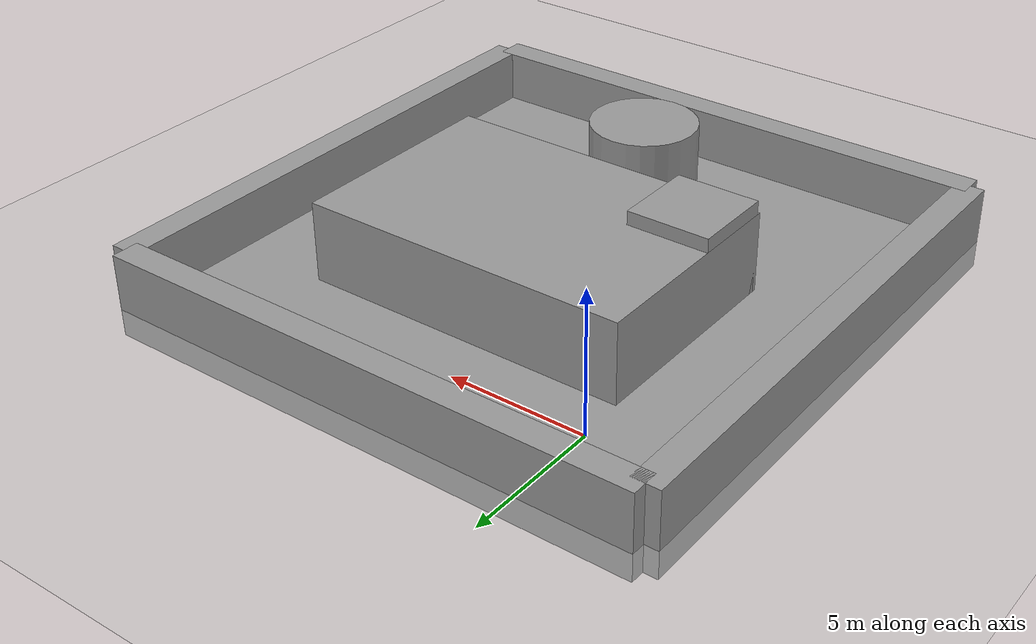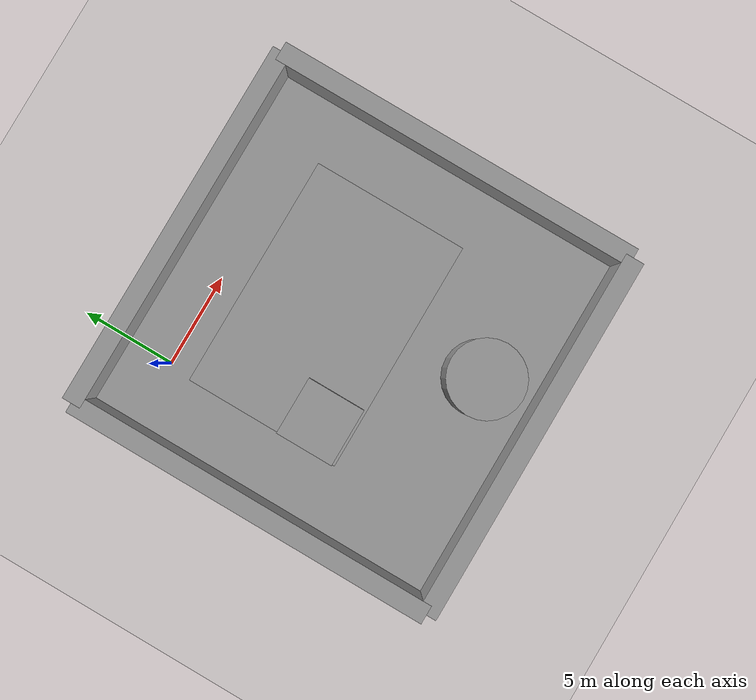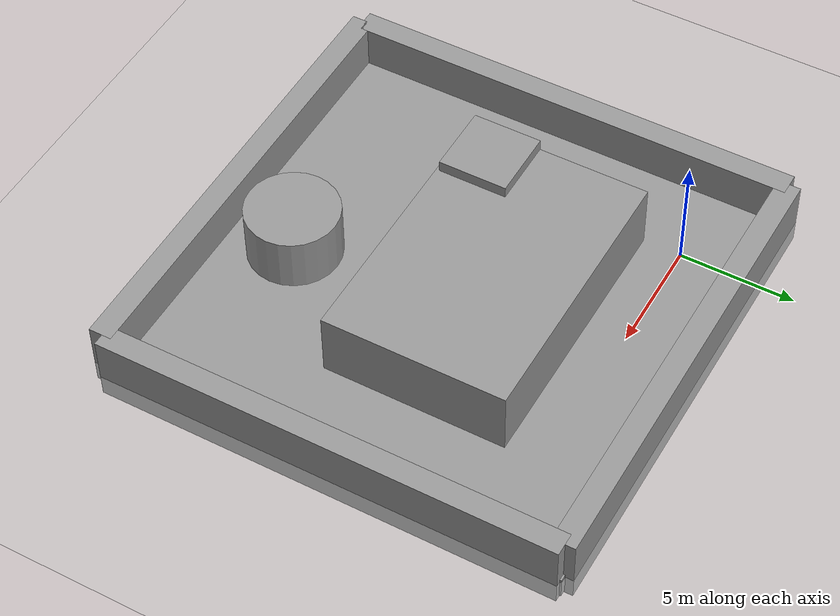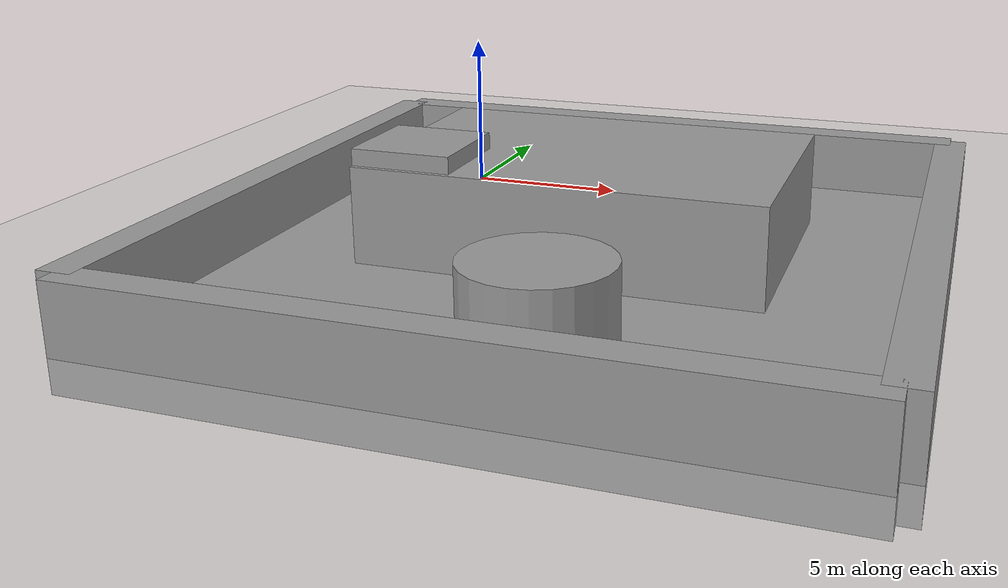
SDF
<sdf version="1.7">
 <world name="default">
  <light name="sun" type="directional">
   <pose>0 0 10 0 -0 0</pose>
   <diffuse>0.8 0.8 0.8 1</diffuse>
   <specular>0.2 0.2 0.2 1</specular>
   <attenuation>
    <range>1000</range>
    <constant>0.9</constant>
    <linear>0.01</linear>
    <quadratic>0.001</quadratic>
   </attenuation>
   <direction>-0.5 0.1 -0.9</direction>
   <spot><inner_angle>0</inner_angle><outer_angle>0</outer_angle><falloff>0</falloff></spot>
  </light>
  <model name="ground_plane">
   <static>1</static>
   <link name="link">
    <collision name="collision">
     <geometry><plane><normal>0 0 1</normal><size>100 100</size></plane></geometry>
     <surface>
      <contact><collide_bitmask>65535</collide_bitmask></contact>
      <friction><ode><mu>100</mu><mu2>50</mu2></ode></friction>
     </surface>
    </collision>
    <visual name="visual">
     <cast_shadows>0</cast_shadows>
     <geometry><plane><normal>0 0 1</normal><size>100 100</size></plane></geometry>
     <material>
      <script><uri>file://media/materials/scripts/gazebo.material</uri><name>Gazebo/Grey</name></script>
     </material>
    </visual>
   </link>
  </model>
  <gravity>0 0 -9.8</gravity>
  <magnetic_field>6e-06 2.3e-05 -4.2e-05</magnetic_field>
  <atmosphere type="adiabatic"/>
  <physics type="ode">
   <max_step_size>0.001</max_step_size>
   <real_time_factor>1</real_time_factor>
   <real_time_update_rate>1000</real_time_update_rate>
  </physics>
  <scene><ambient>0.4 0.4 0.4 1</ambient><background>0.7 0.7 0.7 1</background><shadows>1</shadows></scene>
  <spherical_coordinates>
   <surface_model>EARTH_WGS84</surface_model>
   <latitude_deg>0</latitude_deg>
   <longitude_deg>0</longitude_deg>
   <elevation>0</elevation>
   <heading_deg>0</heading_deg>
  </spherical_coordinates>
  <model name="modelworld">
   <link name="link_0">
    <inertial>
     <mass>12.3713</mass>
     <inertia><ixx>2.06188</ixx><ixy>0</ixy><ixz>0</ixz><iyy>413.408</iyy><iyz>0</iyz><izz>413.408</izz></inertia>
    </inertial>
    <pose>-0.285714 10.8504 -0 0 -0 0</pose>
    <visual name="visual">
     <geometry><box><size>20 1 3</size></box></geometry>
     <material>
      <lighting>1</lighting>
      <script><uri>file://media/materials/scripts/gazebo.material</uri><name>Gazebo/Grey</name></script>
      <shader type="pixel"><normal_map>__default__</normal_map></shader>
      <ambient>0 0 0 1</ambient>
      <diffuse>0.7 0.7 0.7 1</diffuse>
      <specular>0.01 0.01 0.01 1</specular>
      <emissive>0 0 0 1</emissive>
     </material>
    </visual>
    <collision name="collision">
     <geometry><box><size>20 1 3</size></box></geometry>
     <surface>
      <friction>
       <ode><mu>1</mu><mu2>1</mu2><fdir1>0 0 0</fdir1><slip1>0</slip1><slip2>0</slip2></ode>
       <torsional>
        <coefficient>1</coefficient>
        <patch_radius>0</patch_radius>
        <surface_radius>0</surface_radius>
        <use_patch_radius>1</use_patch_radius>
        <ode><slip>0</slip></ode>
       </torsional>
      </friction>
      <bounce><restitution_coefficient>0</restitution_coefficient><threshold>1e+06</threshold></bounce>
      <contact>
       <collide_without_contact>0</collide_without_contact>
       <collide_without_contact_bitmask>1</collide_without_contact_bitmask>
       <collide_bitmask>1</collide_bitmask>
       <ode>
        <soft_cfm>0</soft_cfm>
        <soft_erp>0.2</soft_erp>
        <kp>1e+13</kp>
        <kd>1</kd>
        <max_vel>0.01</max_vel>
        <min_depth>0</min_depth>
       </ode>
       <bullet>
        <split_impulse>1</split_impulse>
        <split_impulse_penetration_threshold>-0.01</split_impulse_penetration_threshold>
        <soft_cfm>0</soft_cfm>
        <soft_erp>0.2</soft_erp>
        <kp>1e+13</kp>
        <kd>1</kd>
       </bullet>
      </contact>
     </surface>
    </collision>
   </link>
   <link name="link_0_0">
    <inertial>
     <mass>198.663</mass>
     <inertia><ixx>6402.39</ixx><ixy>0</ixy><ixz>0</ixz><iyy>1710.45</iyy><iyz>0</iyz><izz>8079.72</izz></inertia>
    </inertial>
    <pose>0 1 -0.9 9e-06 -0 0</pose>
    <visual name="visual">
     <geometry><box><size>20 20 1</size></box></geometry>
     <material>
      <lighting>1</lighting>
      <script><uri>file://media/materials/scripts/gazebo.material</uri><name>Gazebo/Grey</name></script>
      <shader type="pixel"><normal_map>__default__</normal_map></shader>
      <ambient>0.3 0.3 0.3 1</ambient>
      <diffuse>0.7 0.7 0.7 1</diffuse>
      <specular>0.01 0.01 0.01 1</specular>
      <emissive>0 0 0 1</emissive>
     </material>
    </visual>
    <collision name="collision">
     <geometry><box><size>20 20 1</size></box></geometry>
     <surface>
      <friction>
       <ode><mu>1</mu><mu2>1</mu2><fdir1>0 0 0</fdir1><slip1>0</slip1><slip2>0</slip2></ode>
       <torsional>
        <coefficient>1</coefficient>
        <patch_radius>0</patch_radius>
        <surface_radius>0</surface_radius>
        <use_patch_radius>1</use_patch_radius>
        <ode><slip>0</slip></ode>
       </torsional>
      </friction>
      <bounce><restitution_coefficient>0</restitution_coefficient><threshold>1e+06</threshold></bounce>
      <contact>
       <collide_without_contact>0</collide_without_contact>
       <collide_without_contact_bitmask>1</collide_without_contact_bitmask>
       <collide_bitmask>1</collide_bitmask>
       <ode>
        <soft_cfm>0</soft_cfm>
        <soft_erp>0.2</soft_erp>
        <kp>1e+13</kp>
        <kd>1</kd>
        <max_vel>0.01</max_vel>
        <min_depth>0</min_depth>
       </ode>
       <bullet>
        <split_impulse>1</split_impulse>
        <split_impulse_penetration_threshold>-0.01</split_impulse_penetration_threshold>
        <soft_cfm>0</soft_cfm>
        <soft_erp>0.2</soft_erp>
        <kp>1e+13</kp>
        <kd>1</kd>
       </bullet>
      </contact>
     </surface>
    </collision>
   </link>
   <link name="link_0_clone">
    <inertial>
     <mass>12.3713</mass>
     <inertia><ixx>2.06188</ixx><ixy>0</ixy><ixz>0</ixz><iyy>413.407</iyy><iyz>0</iyz><izz>413.407</izz></inertia>
    </inertial>
    <pose>-0.285714 -9.18241 -0 0 -0 0</pose>
    <visual name="visual">
     <geometry><box><size>20 1 3</size></box></geometry>
     <material>
      <lighting>1</lighting>
      <script><uri>file://media/materials/scripts/gazebo.material</uri><name>Gazebo/Grey</name></script>
      <shader type="pixel"><normal_map>__default__</normal_map></shader>
      <ambient>0 0 0 1</ambient>
      <diffuse>0.7 0.7 0.7 1</diffuse>
      <specular>0.01 0.01 0.01 1</specular>
      <emissive>0 0 0 1</emissive>
     </material>
    </visual>
    <collision name="collision">
     <geometry><box><size>20 1 3</size></box></geometry>
     <surface>
      <friction>
       <ode><mu>1</mu><mu2>1</mu2><fdir1>0 0 0</fdir1><slip1>0</slip1><slip2>0</slip2></ode>
       <torsional>
        <coefficient>1</coefficient>
        <patch_radius>0</patch_radius>
        <surface_radius>0</surface_radius>
        <use_patch_radius>1</use_patch_radius>
        <ode><slip>0</slip></ode>
       </torsional>
      </friction>
      <bounce><restitution_coefficient>0</restitution_coefficient><threshold>1e+06</threshold></bounce>
      <contact>
       <collide_without_contact>0</collide_without_contact>
       <collide_without_contact_bitmask>1</collide_without_contact_bitmask>
       <collide_bitmask>1</collide_bitmask>
       <ode>
        <soft_cfm>0</soft_cfm>
        <soft_erp>0.2</soft_erp>
        <kp>1e+13</kp>
        <kd>1</kd>
        <max_vel>0.01</max_vel>
        <min_depth>0</min_depth>
       </ode>
       <bullet>
        <split_impulse>1</split_impulse>
        <split_impulse_penetration_threshold>-0.01</split_impulse_penetration_threshold>
        <soft_cfm>0</soft_cfm>
        <soft_erp>0.2</soft_erp>
        <kp>1e+13</kp>
        <kd>1</kd>
       </bullet>
      </contact>
     </surface>
    </collision>
   </link>
   <link name="link_0_clone_0_clone">
    <inertial>
     <mass>12.3713</mass>
     <inertia><ixx>2.06188</ixx><ixy>0</ixy><ixz>0</ixz><iyy>158.815</iyy><iyz>0</iyz><izz>158.815</izz></inertia>
    </inertial>
    <pose>-10.2857 0.850334 0 0 -0 0</pose>
    <visual name="visual">
     <pose>0 0 0 0 -0 1.5707</pose>
     <geometry><box><size>20 1 3</size></box></geometry>
     <material>
      <lighting>1</lighting>
      <script><uri>file://media/materials/scripts/gazebo.material</uri><name>Gazebo/Grey</name></script>
      <shader type="pixel"><normal_map>__default__</normal_map></shader>
      <ambient>0 0 0 1</ambient>
      <diffuse>0.7 0.7 0.7 1</diffuse>
      <specular>0.01 0.01 0.01 1</specular>
      <emissive>0 0 0 1</emissive>
     </material>
    </visual>
    <collision name="collision">
     <pose>0 0 0 0 -0 1.5707</pose>
     <geometry><box><size>20 1 3</size></box></geometry>
     <surface>
      <friction>
       <ode><mu>1</mu><mu2>1</mu2><fdir1>0 0 0</fdir1><slip1>0</slip1><slip2>0</slip2></ode>
       <torsional>
        <coefficient>1</coefficient>
        <patch_radius>0</patch_radius>
        <surface_radius>0</surface_radius>
        <use_patch_radius>1</use_patch_radius>
        <ode><slip>0</slip></ode>
       </torsional>
      </friction>
      <bounce><restitution_coefficient>0</restitution_coefficient><threshold>1e+06</threshold></bounce>
      <contact>
       <collide_without_contact>0</collide_without_contact>
       <collide_without_contact_bitmask>1</collide_without_contact_bitmask>
       <collide_bitmask>1</collide_bitmask>
       <ode>
        <soft_cfm>0</soft_cfm>
        <soft_erp>0.2</soft_erp>
        <kp>1e+13</kp>
        <kd>1</kd>
        <max_vel>0.01</max_vel>
        <min_depth>0</min_depth>
       </ode>
       <bullet>
        <split_impulse>1</split_impulse>
        <split_impulse_penetration_threshold>-0.01</split_impulse_penetration_threshold>
        <soft_cfm>0</soft_cfm>
        <soft_erp>0.2</soft_erp>
        <kp>1e+13</kp>
        <kd>1</kd>
       </bullet>
      </contact>
     </surface>
    </collision>
   </link>
   <link name="link_0_clone_0_clone_clone">
    <inertial>
     <mass>12.3713</mass>
     <inertia><ixx>2.06188</ixx><ixy>0</ixy><ixz>0</ixz><iyy>158.815</iyy><iyz>0</iyz><izz>158.815</izz></inertia>
    </inertial>
    <pose>9.71429 0.916349 0 0 -0 0</pose>
    <visual name="visual">
     <pose>0 0 0 0 -0 1.5707</pose>
     <geometry><box><size>20 1 3</size></box></geometry>
     <material>
      <lighting>1</lighting>
      <script><uri>file://media/materials/scripts/gazebo.material</uri><name>Gazebo/Grey</name></script>
      <shader type="pixel"><normal_map>__default__</normal_map></shader>
      <ambient>0 0 0 1</ambient>
      <diffuse>0.7 0.7 0.7 1</diffuse>
      <specular>0.01 0.01 0.01 1</specular>
      <emissive>0 0 0 1</emissive>
     </material>
    </visual>
    <collision name="collision">
     <pose>0 0 0 0 -0 1.5707</pose>
     <geometry><box><size>20 1 3</size></box></geometry>
     <surface>
      <friction>
       <ode><mu>1</mu><mu2>1</mu2><fdir1>0 0 0</fdir1><slip1>0</slip1><slip2>0</slip2></ode>
       <torsional>
        <coefficient>1</coefficient>
        <patch_radius>0</patch_radius>
        <surface_radius>0</surface_radius>
        <use_patch_radius>1</use_patch_radius>
        <ode><slip>0</slip></ode>
       </torsional>
      </friction>
      <bounce><restitution_coefficient>0</restitution_coefficient><threshold>1e+06</threshold></bounce>
      <contact>
       <collide_without_contact>0</collide_without_contact>
       <collide_without_contact_bitmask>1</collide_without_contact_bitmask>
       <collide_bitmask>1</collide_bitmask>
       <ode>
        <soft_cfm>0</soft_cfm>
        <soft_erp>0.2</soft_erp>
        <kp>1e+13</kp>
        <kd>1</kd>
        <max_vel>0.01</max_vel>
        <min_depth>0</min_depth>
       </ode>
       <bullet>
        <split_impulse>1</split_impulse>
        <split_impulse_penetration_threshold>-0.01</split_impulse_penetration_threshold>
        <soft_cfm>0</soft_cfm>
        <soft_erp>0.2</soft_erp>
        <kp>1e+13</kp>
        <kd>1</kd>
       </bullet>
      </contact>
     </surface>
    </collision>
   </link>
   <link name="link_1">
    <inertial>
     <mass>111.165</mass>
     <inertia><ixx>704.926</ixx><ixy>0</ixy><ixz>0</ixz><iyy>1533.72</iyy><iyz>0</iyz><izz>2220.12</izz></inertia>
    </inertial>
    <pose>-0.285714 2.35033 0 0 -0 0</pose>
    <visual name="visual">
     <geometry><box><size>12 8 5</size></box></geometry>
     <material>
      <lighting>1</lighting>
      <script><uri>file://media/materials/scripts/gazebo.material</uri><name>Gazebo/Grey</name></script>
      <shader type="pixel"><normal_map>__default__</normal_map></shader>
      <ambient>0 0 0 1</ambient>
      <diffuse>0.7 0.7 0.7 1</diffuse>
      <specular>0.01 0.01 0.01 1</specular>
      <emissive>0 0 0 1</emissive>
     </material>
    </visual>
    <collision name="collision">
     <geometry><box><size>12 8 5</size></box></geometry>
     <surface>
      <friction>
       <ode><mu>1</mu><mu2>1</mu2><fdir1>0 0 0</fdir1><slip1>0</slip1><slip2>0</slip2></ode>
       <torsional>
        <coefficient>1</coefficient>
        <patch_radius>0</patch_radius>
        <surface_radius>0</surface_radius>
        <use_patch_radius>1</use_patch_radius>
        <ode><slip>0</slip></ode>
       </torsional>
      </friction>
      <bounce><restitution_coefficient>0</restitution_coefficient><threshold>1e+06</threshold></bounce>
      <contact>
       <collide_without_contact>0</collide_without_contact>
       <collide_without_contact_bitmask>1</collide_without_contact_bitmask>
       <collide_bitmask>1</collide_bitmask>
       <ode>
        <soft_cfm>0</soft_cfm>
        <soft_erp>0.2</soft_erp>
        <kp>1e+13</kp>
        <kd>1</kd>
        <max_vel>0.01</max_vel>
        <min_depth>0</min_depth>
       </ode>
       <bullet>
        <split_impulse>1</split_impulse>
        <split_impulse_penetration_threshold>-0.01</split_impulse_penetration_threshold>
        <soft_cfm>0</soft_cfm>
        <soft_erp>0.2</soft_erp>
        <kp>1e+13</kp>
        <kd>1</kd>
       </bullet>
      </contact>
     </surface>
    </collision>
   </link>
   <link name="link_2">
    <inertial>
     <mass>9.27476</mass>
     <inertia><ixx>7.76855</ixx><ixy>0</ixy><ixz>0</ixz><iyy>8.11872</iyy><iyz>0</iyz><izz>14.3415</izz></inertia>
    </inertial>
    <pose>-4.78571 0 0.5 0 -0 0</pose>
    <visual name="visual">
     <geometry><box><size>3 3 5</size></box></geometry>
     <material>
      <lighting>1</lighting>
      <script><uri>file://media/materials/scripts/gazebo.material</uri><name>Gazebo/Grey</name></script>
      <shader type="pixel"><normal_map>__default__</normal_map></shader>
      <ambient>0 0 0 1</ambient>
      <diffuse>0.7 0.7 0.7 1</diffuse>
      <specular>0.01 0.01 0.01 1</specular>
      <emissive>0 0 0 1</emissive>
     </material>
    </visual>
    <collision name="collision">
     <geometry><box><size>3 3 5</size></box></geometry>
     <surface>
      <friction>
       <ode><mu>1</mu><mu2>1</mu2><fdir1>0 0 0</fdir1><slip1>0</slip1><slip2>0</slip2></ode>
       <torsional>
        <coefficient>1</coefficient>
        <patch_radius>0</patch_radius>
        <surface_radius>0</surface_radius>
        <use_patch_radius>1</use_patch_radius>
        <ode><slip>0</slip></ode>
       </torsional>
      </friction>
      <bounce><restitution_coefficient>0</restitution_coefficient><threshold>1e+06</threshold></bounce>
      <contact>
       <collide_without_contact>0</collide_without_contact>
       <collide_without_contact_bitmask>1</collide_without_contact_bitmask>
       <collide_bitmask>1</collide_bitmask>
       <ode>
        <soft_cfm>0</soft_cfm>
        <soft_erp>0.2</soft_erp>
        <kp>1e+13</kp>
        <kd>1</kd>
        <max_vel>0.01</max_vel>
        <min_depth>0</min_depth>
       </ode>
       <bullet>
        <split_impulse>1</split_impulse>
        <split_impulse_penetration_threshold>-0.01</split_impulse_penetration_threshold>
        <soft_cfm>0</soft_cfm>
        <soft_erp>0.2</soft_erp>
        <kp>1e+13</kp>
        <kd>1</kd>
       </bullet>
      </contact>
     </surface>
    </collision>
   </link>
   <link name="link_3">
    <inertial>
     <mass>14.2298</mass>
     <inertia><ixx>13.8414</ixx><ixy>0</ixy><ixz>0</ixz><iyy>13.8414</iyy><iyz>0</iyz><izz>25.3111</izz></inertia>
    </inertial>
    <pose>0.964286 -5.85533 0 0 -0 0</pose>
    <visual name="visual">
     <geometry><cylinder><radius>2</radius><length>4</length></cylinder></geometry>
     <material>
      <lighting>1</lighting>
      <script><uri>file://media/materials/scripts/gazebo.material</uri><name>Gazebo/Grey</name></script>
      <shader type="pixel"><normal_map>__default__</normal_map></shader>
      <ambient>0 0 0 1</ambient>
      <diffuse>0.7 0.7 0.7 1</diffuse>
      <specular>0.01 0.01 0.01 1</specular>
      <emissive>0 0 0 1</emissive>
     </material>
    </visual>
    <collision name="collision_1">
     <geometry><cylinder><radius>2</radius><length>4</length></cylinder></geometry>
     <surface>
      <friction>
       <ode><mu>1</mu><mu2>1</mu2><fdir1>0 0 0</fdir1><slip1>0</slip1><slip2>0</slip2></ode>
       <torsional>
        <coefficient>1</coefficient>
        <patch_radius>0</patch_radius>
        <surface_radius>0</surface_radius>
        <use_patch_radius>1</use_patch_radius>
        <ode><slip>0</slip></ode>
       </torsional>
      </friction>
      <bounce><restitution_coefficient>0</restitution_coefficient><threshold>1e+06</threshold></bounce>
      <contact>
       <collide_without_contact>0</collide_without_contact>
       <collide_without_contact_bitmask>1</collide_without_contact_bitmask>
       <collide_bitmask>1</collide_bitmask>
       <ode>
        <soft_cfm>0</soft_cfm>
        <soft_erp>0.2</soft_erp>
        <kp>1e+13</kp>
        <kd>1</kd>
        <max_vel>0.01</max_vel>
        <min_depth>0</min_depth>
       </ode>
       <bullet>
        <split_impulse>1</split_impulse>
        <split_impulse_penetration_threshold>-0.01</split_impulse_penetration_threshold>
        <soft_cfm>0</soft_cfm>
        <soft_erp>0.2</soft_erp>
        <kp>1e+13</kp>
        <kd>1</kd>
       </bullet>
      </contact>
     </surface>
    </collision>
   </link>
   <joint name="link_0_0_JOINT_0" type="fixed">
    <parent>link_0_0</parent>
    <child>link_0</child>
    <physics>
     <ode><limit><cfm>0</cfm><erp>0.2</erp></limit><suspension><cfm>0</cfm><erp>0.2</erp></suspension></ode>
    </physics>
   </joint>
   <joint name="link_0_0_JOINT_1" type="fixed">
    <parent>link_0_0</parent>
    <child>link_0_clone_0_clone</child>
    <physics>
     <ode><limit><cfm>0</cfm><erp>0.2</erp></limit><suspension><cfm>0</cfm><erp>0.2</erp></suspension></ode>
    </physics>
   </joint>
   <joint name="link_0_0_JOINT_2" type="fixed">
    <parent>link_0_0</parent>
    <child>link_0_clone</child>
    <physics>
     <ode><limit><cfm>0</cfm><erp>0.2</erp></limit><suspension><cfm>0</cfm><erp>0.2</erp></suspension></ode>
    </physics>
   </joint>
   <joint name="link_0_0_JOINT_3" type="fixed">
    <parent>link_0_0</parent>
    <child>link_0_clone_0_clone_clone</child>
    <physics>
     <ode><limit><cfm>0</cfm><erp>0.2</erp></limit><suspension><cfm>0</cfm><erp>0.2</erp></suspension></ode>
    </physics>
   </joint>
   <joint name="link_0_0_JOINT_4" type="fixed">
    <parent>link_0_0</parent>
    <child>link_1</child>
    <physics>
     <ode><limit><cfm>0</cfm><erp>0.2</erp></limit><suspension><cfm>0</cfm><erp>0.2</erp></suspension></ode>
    </physics>
   </joint>
   <joint name="link_0_0_JOINT_5" type="fixed">
    <parent>link_0_0</parent>
    <child>link_2</child>
    <physics>
     <ode><limit><cfm>0</cfm><erp>0.2</erp></limit><suspension><cfm>0</cfm><erp>0.2</erp></suspension></ode>
    </physics>
   </joint>
   <joint name="link_0_0_JOINT_6" type="fixed">
    <parent>link_0_0</parent>
    <child>link_3</child>
    <physics>
     <ode><limit><cfm>0</cfm><erp>0.2</erp></limit><suspension><cfm>0</cfm><erp>0.2</erp></suspension></ode>
    </physics>
   </joint>
   <static>1</static>
   <pose>6.3525 -7.99467 0.500095 -9e-06 0 0</pose>
  </model>
 </world>
</sdf>
